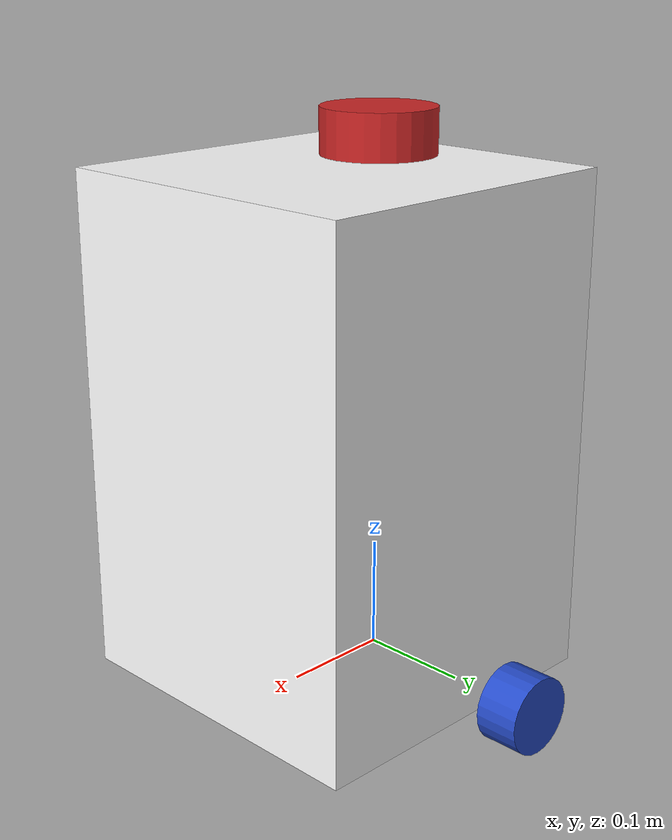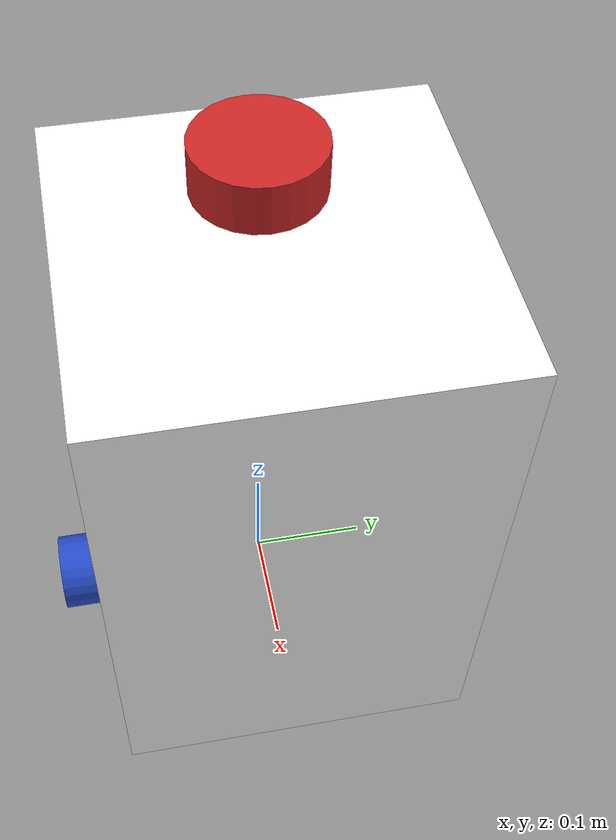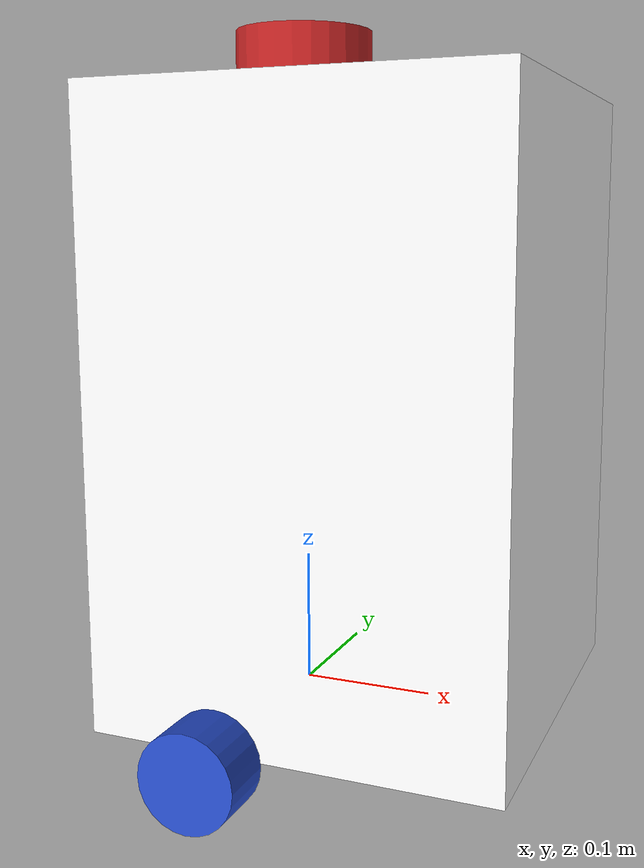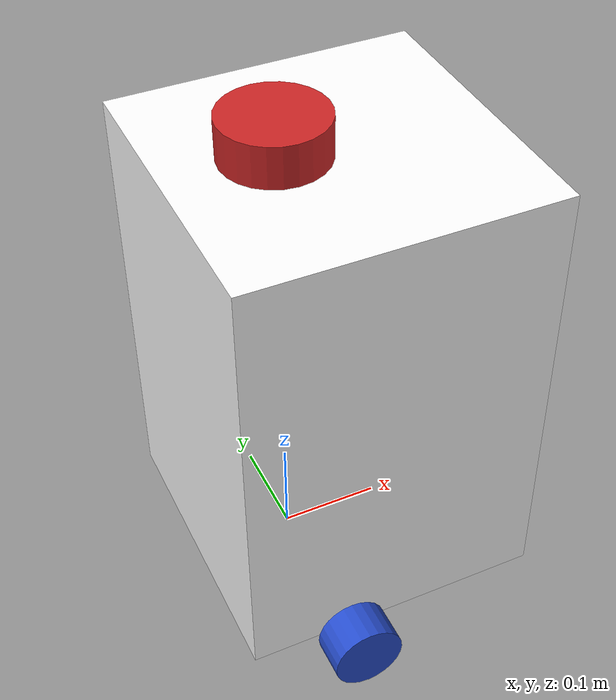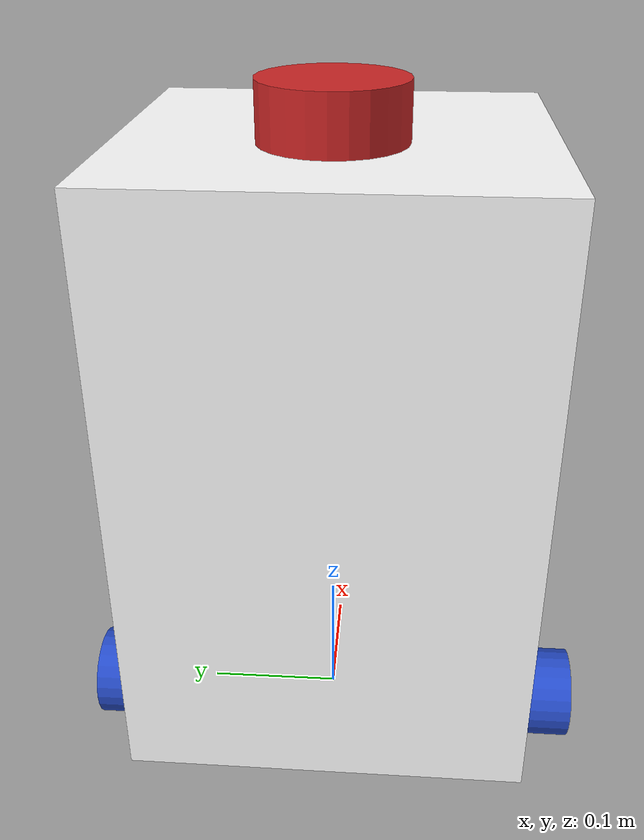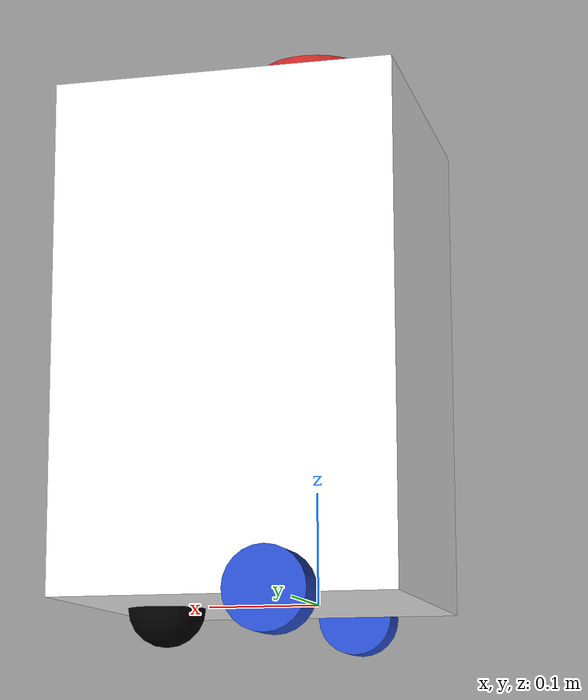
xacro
<?xml version="1.0"?>
<robot xmlns:xacro="http://www.ros.org/wiki/xacro"  name="robot">

    <xacro:include filename="robot_core.xacro"/>

    <xacro:include filename="ros2_control.xacro"/>
    <xacro:include filename="lidar.xacro"/>

</robot>

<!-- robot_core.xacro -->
<robot xmlns:xacro="http://www.ros.org/wiki/xacro">

    <xacro:include filename="inertial_macros.xacro"/>

    <material name="white">
        <color rgba="1 1 1 1"/>
    </material>

    <material name="brown">
        <color rgba="0.34 0.14 0.07 1"/>
    </material>

    <material name="blue">
        <color rgba="0.2 0.2 1 1"/>
    </material>

    <material name="black">
        <color rgba="0 0 0 1"/>
    </material>

    <material name="red">
        <color rgba="1 0 0 1"/>
    </material>

    <!-- BASE LINK -->

    <link name="base_link">

    </link>

    <!-- BASE_FOOTPRINT LINK -->

    <joint name="base_footprint_joint" type="fixed">
        <parent link="base_link"/>
        <child link="base_footprint"/>
        <origin xyz="0 0 0" rpy="0 0 0"/>
    </joint>

    <link name="base_footprint">
    </link>

    <!-- CHASSIS LINK -->

    <joint name="chassis_joint" type="fixed">
        <parent link="base_link"/>
        <child link="chassis"/>
        <origin xyz="-0.1 0.0 0"/>
    </joint>

    <link name="chassis">
        <visual>
            <origin xyz="0.15 0.0 0.225"/>
            <geometry>
                <box size="0.3 0.3 0.45"/>
            </geometry>
            <material name="white"/>
        </visual>
        <collision>
            <origin xyz="0.15 0.0 0.225"/>
            <geometry>
                <box size="0.3 0.3 0.45"/>
            </geometry>
        </collision>
        <xacro:inertial_box mass="0.5" x="0.3" y="0.3" z="0.45">
            <origin xyz="0.15 0.0 0.225" rpy="0.0 0.0 0.0"/>
        </xacro:inertial_box>
    </link>

    <gazebo reference="chassis">
        <material>Gazebo/White</material>
    </gazebo>

    <!-- LEFT WHEEL LINK -->

    <joint name="left_wheel_joint" type="continuous">
        <parent link="base_link"/>
        <child link="left_wheel"/>
        <origin xyz="0.0 0.175 0.0" rpy="-${pi/2} 0.0 0.0"/>
        <axis xyz="0.0 0.0 1.0"/>
    </joint>

    <link name="left_wheel">
        <visual>
            <geometry>
                <cylinder radius="0.035" length="0.04"/>
                <material name="blue"/>
            </geometry>
        </visual>
        <collision>
            <geometry>
                <sphere radius="0.035"/>
            </geometry>
        </collision>
        <xacro:inertial_cylinder mass="0.1" length="0.04" radius="0.035">
            <origin xyz="0.0 0.0 0.0" rpy="0.0 0.0 0.0"/>
        </xacro:inertial_cylinder>
    </link>

    <gazebo reference="left_wheel">
        <material>Gazebo/Blue</material>
    </gazebo>

    <!-- RIGHT WHEEL LINK -->

    <joint name="right_wheel_joint" type="continuous">
        <parent link="base_link"/>
        <child link="right_wheel"/>
        <origin xyz="0.0 -0.175 0.0" rpy="${pi/2} 0.0 0.0"/>
        <axis xyz="0.0 0.0 -1.0"/>
    </joint>

    <link name="right_wheel">
        <visual>
            <geometry>
                <cylinder radius="0.035" length="0.04"/>
                <material name="blue"/>
            </geometry>
        </visual>
        <collision>
            <geometry>
                <sphere radius="0.035"/>
            </geometry>
        </collision>
        <xacro:inertial_cylinder mass="0.1" length="0.04" radius="0.035">
            <origin xyz="0.0 0.0 0.0" rpy="0.0 0.0 0.0"/>
        </xacro:inertial_cylinder>
    </link>

    <gazebo reference="right_wheel">
        <material>Gazebo/Blue</material>
    </gazebo>

    <!-- CASTER WHEEL LINK -->

    <joint name="caster_wheel_joint" type="fixed">
        <parent link="chassis"/>
        <child link="caster_wheel"/>
        <origin xyz="0.24 0.0 0.0"/>
    </joint>

    <link name="caster_wheel">
        <visual>
            <geometry>
                <sphere radius="0.035"/>
            </geometry>
            <material name="black"/>
        </visual>
        <collision>
            <geometry>
                <sphere radius="0.035"/>
            </geometry>
        </collision>
        <xacro:inertial_sphere mass="0.1" radius="0.05">
            <origin xyz="0.0 0.0 0.0" rpy="0.0 0.0 0.0"/>
        </xacro:inertial_sphere>
    </link>

    <gazebo reference="caster_wheel">
        <material>Gazebo/Black</material>
        <mu1 value="0.001"/>
        <mu2 value="0.001"/>
    </gazebo>

</robot>

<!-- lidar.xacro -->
<robot xmlns:xacro="http://www.ros.org/wiki/xacro">

    <joint name="laser_joint" type="fixed">
        <parent link="chassis"/>
        <child link="laser_frame"/>
        <origin xyz="0.1 0.0 0.475" rpy="0.0 0.0 0.0"/>
    </joint>

    <link name="laser_frame">
        <visual>
            <geometry>
                <cylinder radius="0.05" length="0.04"/>
                <material name="red"/>
            </geometry>
        </visual>
        <collision>
            <geometry>
                <cylinder radius="0.05" length="0.04"/>
            </geometry>
        </collision>
        <xacro:inertial_cylinder mass="0.1" length="0.04" radius="0.05">
            <origin xyz="0.0 0.0 0.0" rpy="0.0 0.0 0.0"/>
        </xacro:inertial_cylinder>
    </link>

    <gazebo reference="laser_frame">
        <material>
            Gazebo/Red
        </material>

        <sensor name="laser" type="ray">
            <pose> 0 0 0 0 0 0 </pose>
            <visualize>true</visualize>
            <update_rate>10</update_rate>
            <ray>
                <scan>
                    <horizontal>
                        <samples>360</samples>
                        <resolution>1</resolution>
                        <min_angle>-3.14</min_angle>
                        <max_angle>3.14</max_angle>
                    </horizontal>
                </scan>
                <range>
                    <min>0.3</min>
                    <max>12</max>
                    <resolution>0.01</resolution>
                </range>
            </ray>
            <plugin name="lazer_controller" filename="libgazebo_ros_ray_sensor.so">
                <ros>
                    <argument>~/out:=scan</argument>
                </ros>
                <output_type>sensor_msgs/LaserScan</output_type>
                <frame_name>laser_frame</frame_name>
            </plugin>
        </sensor>
    </gazebo>

</robot>
